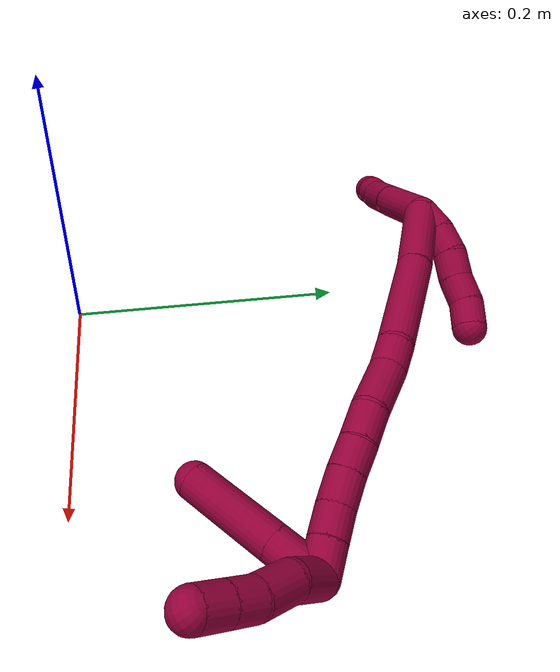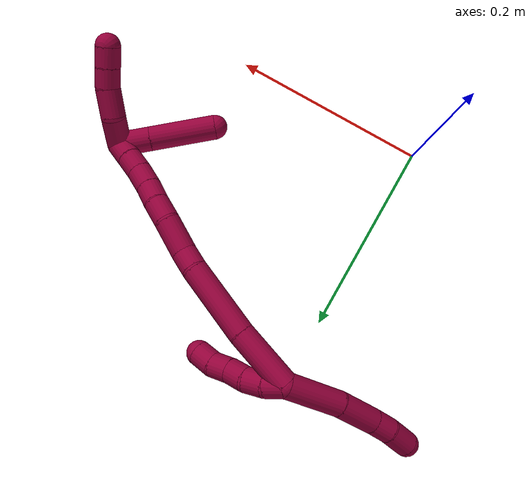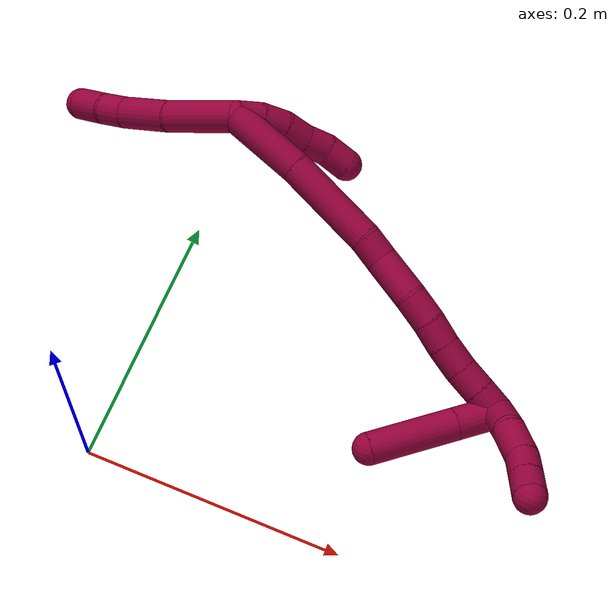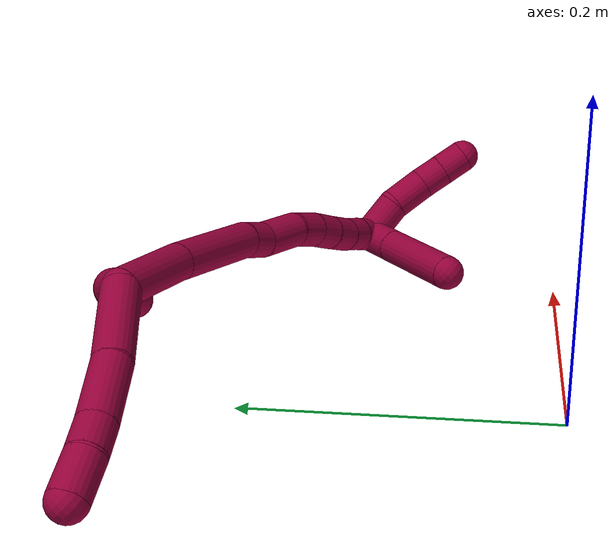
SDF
<sdf version="1.7">
 <world name="default">
  <model name="8">
   <static>0</static>
   <link name="8">
    <collision name="collision-cylinder-e_1_2_8">
     <pose>-0.024759 0.010492 -0.011886 -2.4184 -1.00123 1.93183</pose>
     <geometry><cylinder><radius>0.0125</radius><length>0.0588</length></cylinder></geometry>
     <surface>
      <friction><ode><mu>1.16</mu><mu2>1.16</mu2><slip1>0</slip1><slip2>0</slip2></ode></friction>
      <contact><ode><kp>1e+06</kp><kd>1</kd><max_vel>0</max_vel><min_depth>0.001</min_depth></ode></contact>
     </surface>
    </collision>
    <visual name="visual-cylinder-e_1_2_8">
     <pose>-0.024759 0.010492 -0.011886 -2.4184 -1.00123 1.93183</pose>
     <geometry><cylinder><radius>0.0125</radius><length>0.0588</length></cylinder></geometry>
     <material><ambient>0.584314 0 0.227451 1</ambient></material>
    </visual>
    <collision name="collision-cylinder-e_2_8_9">
     <pose>-0.066558 0.030919 -0.031045 -2.20272 -0.94511 1.5785</pose>
     <geometry><cylinder><radius>0.0125</radius><length>0.042047</length></cylinder></geometry>
     <surface>
      <friction><ode><mu>1.16</mu><mu2>1.16</mu2><slip1>0</slip1><slip2>0</slip2></ode></friction>
      <contact><ode><kp>1e+06</kp><kd>1</kd><max_vel>0</max_vel><min_depth>0.001</min_depth></ode></contact>
     </surface>
    </collision>
    <visual name="visual-cylinder-e_2_8_9">
     <pose>-0.066558 0.030919 -0.031045 -2.20272 -0.94511 1.5785</pose>
     <geometry><cylinder><radius>0.0125</radius><length>0.042047</length></cylinder></geometry>
     <material><ambient>0.584314 0 0.227451 1</ambient></material>
    </visual>
    <collision name="collision-cylinder-e_3_9_10">
     <pose>-0.092565 0.04574 -0.041235 -2.10902 -1.00532 1.53879</pose>
     <geometry><cylinder><radius>0.0125</radius><length>0.021238</length></cylinder></geometry>
     <surface>
      <friction><ode><mu>1.16</mu><mu2>1.16</mu2><slip1>0</slip1><slip2>0</slip2></ode></friction>
      <contact><ode><kp>1e+06</kp><kd>1</kd><max_vel>0</max_vel><min_depth>0.001</min_depth></ode></contact>
     </surface>
    </collision>
    <visual name="visual-cylinder-e_3_9_10">
     <pose>-0.092565 0.04574 -0.041235 -2.10902 -1.00532 1.53879</pose>
     <geometry><cylinder><radius>0.0125</radius><length>0.021238</length></cylinder></geometry>
     <material><ambient>0.584314 0 0.227451 1</ambient></material>
    </visual>
    <collision name="collision-cylinder-e_4_10_6">
     <pose>-0.112038 0.05899 -0.047951 -1.99718 -0.852245 1.22785</pose>
     <geometry><cylinder><radius>0.0125</radius><length>0.027915</length></cylinder></geometry>
     <surface>
      <friction><ode><mu>1.16</mu><mu2>1.16</mu2><slip1>0</slip1><slip2>0</slip2></ode></friction>
      <contact><ode><kp>1e+06</kp><kd>1</kd><max_vel>0</max_vel><min_depth>0.001</min_depth></ode></contact>
     </surface>
    </collision>
    <visual name="visual-cylinder-e_4_10_6">
     <pose>-0.112038 0.05899 -0.047951 -1.99718 -0.852245 1.22785</pose>
     <geometry><cylinder><radius>0.0125</radius><length>0.027915</length></cylinder></geometry>
     <material><ambient>0.584314 0 0.227451 1</ambient></material>
    </visual>
    <collision name="collision-cylinder-e_1_2_11">
     <pose>0.008915 0.004284 0.001474 -1.23935 1.10058 -0.825125</pose>
     <geometry><cylinder><radius>0.0125</radius><length>0.02</length></cylinder></geometry>
     <surface>
      <friction><ode><mu>1.16</mu><mu2>1.16</mu2><slip1>0</slip1><slip2>0</slip2></ode></friction>
      <contact><ode><kp>1e+06</kp><kd>1</kd><max_vel>0</max_vel><min_depth>0.001</min_depth></ode></contact>
     </surface>
    </collision>
    <visual name="visual-cylinder-e_1_2_11">
     <pose>0.008915 0.004284 0.001474 -1.23935 1.10058 -0.825125</pose>
     <geometry><cylinder><radius>0.0125</radius><length>0.02</length></cylinder></geometry>
     <material><ambient>0.584314 0 0.227451 1</ambient></material>
    </visual>
    <collision name="collision-cylinder-e_2_11_12">
     <pose>0.027269 0.011811 0.002328 -1.76002 1.23437 -1.4188</pose>
     <geometry><cylinder><radius>0.0125</radius><length>0.02</length></cylinder></geometry>
     <surface>
      <friction><ode><mu>1.16</mu><mu2>1.16</mu2><slip1>0</slip1><slip2>0</slip2></ode></friction>
      <contact><ode><kp>1e+06</kp><kd>1</kd><max_vel>0</max_vel><min_depth>0.001</min_depth></ode></contact>
     </surface>
    </collision>
    <visual name="visual-cylinder-e_2_11_12">
     <pose>0.027269 0.011811 0.002328 -1.76002 1.23437 -1.4188</pose>
     <geometry><cylinder><radius>0.0125</radius><length>0.02</length></cylinder></geometry>
     <material><ambient>0.584314 0 0.227451 1</ambient></material>
    </visual>
    <collision name="collision-cylinder-e_3_12_13">
     <pose>0.04583 0.017857 -0.001282 -2.38801 1.14848 -2.04376</pose>
     <geometry><cylinder><radius>0.0125</radius><length>0.02</length></cylinder></geometry>
     <surface>
      <friction><ode><mu>1.16</mu><mu2>1.16</mu2><slip1>0</slip1><slip2>0</slip2></ode></friction>
      <contact><ode><kp>1e+06</kp><kd>1</kd><max_vel>0</max_vel><min_depth>0.001</min_depth></ode></contact>
     </surface>
    </collision>
    <visual name="visual-cylinder-e_3_12_13">
     <pose>0.04583 0.017857 -0.001282 -2.38801 1.14848 -2.04376</pose>
     <geometry><cylinder><radius>0.0125</radius><length>0.02</length></cylinder></geometry>
     <material><ambient>0.584314 0 0.227451 1</ambient></material>
    </visual>
    <collision name="collision-cylinder-e_4_13_14">
     <pose>0.064439 0.023539 -0.005572 -1.99549 1.24954 -1.68171</pose>
     <geometry><cylinder><radius>0.0125</radius><length>0.02</length></cylinder></geometry>
     <surface>
      <friction><ode><mu>1.16</mu><mu2>1.16</mu2><slip1>0</slip1><slip2>0</slip2></ode></friction>
      <contact><ode><kp>1e+06</kp><kd>1</kd><max_vel>0</max_vel><min_depth>0.001</min_depth></ode></contact>
     </surface>
    </collision>
    <visual name="visual-cylinder-e_4_13_14">
     <pose>0.064439 0.023539 -0.005572 -1.99549 1.24954 -1.68171</pose>
     <geometry><cylinder><radius>0.0125</radius><length>0.02</length></cylinder></geometry>
     <material><ambient>0.584314 0 0.227451 1</ambient></material>
    </visual>
    <collision name="collision-cylinder-e_5_14_5">
     <pose>0.083373 0.027076 -0.01009 -2.93922 1.23622 -2.85793</pose>
     <geometry><cylinder><radius>0.0125</radius><length>0.02</length></cylinder></geometry>
     <surface>
      <friction><ode><mu>1.16</mu><mu2>1.16</mu2><slip1>0</slip1><slip2>0</slip2></ode></friction>
      <contact><ode><kp>1e+06</kp><kd>1</kd><max_vel>0</max_vel><min_depth>0.001</min_depth></ode></contact>
     </surface>
    </collision>
    <visual name="visual-cylinder-e_5_14_5">
     <pose>0.083373 0.027076 -0.01009 -2.93922 1.23622 -2.85793</pose>
     <geometry><cylinder><radius>0.0125</radius><length>0.02</length></cylinder></geometry>
     <material><ambient>0.584314 0 0.227451 1</ambient></material>
    </visual>
    <collision name="collision-cylinder-e_1_2_15">
     <pose>0.027903 -0.010368 -0.007899 2.22185 1.13378 1.81919</pose>
     <geometry><cylinder><radius>0.0125</radius><length>0.061595</length></cylinder></geometry>
     <surface>
      <friction><ode><mu>1.16</mu><mu2>1.16</mu2><slip1>0</slip1><slip2>0</slip2></ode></friction>
      <contact><ode><kp>1e+06</kp><kd>1</kd><max_vel>0</max_vel><min_depth>0.001</min_depth></ode></contact>
     </surface>
    </collision>
    <visual name="visual-cylinder-e_1_2_15">
     <pose>0.027903 -0.010368 -0.007899 2.22185 1.13378 1.81919</pose>
     <geometry><cylinder><radius>0.0125</radius><length>0.061595</length></cylinder></geometry>
     <material><ambient>0.584314 0 0.227451 1</ambient></material>
    </visual>
    <collision name="collision-cylinder-e_2_15_16">
     <pose>0.088696 -0.034024 -0.028449 2.33163 1.06199 1.88048</pose>
     <geometry><cylinder><radius>0.0125</radius><length>0.075323</length></cylinder></geometry>
     <surface>
      <friction><ode><mu>1.16</mu><mu2>1.16</mu2><slip1>0</slip1><slip2>0</slip2></ode></friction>
      <contact><ode><kp>1e+06</kp><kd>1</kd><max_vel>0</max_vel><min_depth>0.001</min_depth></ode></contact>
     </surface>
    </collision>
    <visual name="visual-cylinder-e_2_15_16">
     <pose>0.088696 -0.034024 -0.028449 2.33163 1.06199 1.88048</pose>
     <geometry><cylinder><radius>0.0125</radius><length>0.075323</length></cylinder></geometry>
     <material><ambient>0.584314 0 0.227451 1</ambient></material>
    </visual>
    <collision name="collision-cylinder-e_3_16_17">
     <pose>0.130132 -0.049786 -0.046098 2.68191 0.992477 2.32579</pose>
     <geometry><cylinder><radius>0.0125</radius><length>0.020408</length></cylinder></geometry>
     <surface>
      <friction><ode><mu>1.16</mu><mu2>1.16</mu2><slip1>0</slip1><slip2>0</slip2></ode></friction>
      <contact><ode><kp>1e+06</kp><kd>1</kd><max_vel>0</max_vel><min_depth>0.001</min_depth></ode></contact>
     </surface>
    </collision>
    <visual name="visual-cylinder-e_3_16_17">
     <pose>0.130132 -0.049786 -0.046098 2.68191 0.992477 2.32579</pose>
     <geometry><cylinder><radius>0.0125</radius><length>0.020408</length></cylinder></geometry>
     <material><ambient>0.584314 0 0.227451 1</ambient></material>
    </visual>
    <collision name="collision-cylinder-e_4_17_18">
     <pose>0.152816 -0.060406 -0.058013 2.27475 0.923632 1.64353</pose>
     <geometry><cylinder><radius>0.0125</radius><length>0.035447</length></cylinder></geometry>
     <surface>
      <friction><ode><mu>1.16</mu><mu2>1.16</mu2><slip1>0</slip1><slip2>0</slip2></ode></friction>
      <contact><ode><kp>1e+06</kp><kd>1</kd><max_vel>0</max_vel><min_depth>0.001</min_depth></ode></contact>
     </surface>
    </collision>
    <visual name="visual-cylinder-e_4_17_18">
     <pose>0.152816 -0.060406 -0.058013 2.27475 0.923632 1.64353</pose>
     <geometry><cylinder><radius>0.0125</radius><length>0.035447</length></cylinder></geometry>
     <material><ambient>0.584314 0 0.227451 1</ambient></material>
    </visual>
    <collision name="collision-cylinder-e_5_18_19">
     <pose>0.176488 -0.071758 -0.070695 2.63419 0.965407 2.22268</pose>
     <geometry><cylinder><radius>0.0125</radius><length>0.023186</length></cylinder></geometry>
     <surface>
      <friction><ode><mu>1.16</mu><mu2>1.16</mu2><slip1>0</slip1><slip2>0</slip2></ode></friction>
      <contact><ode><kp>1e+06</kp><kd>1</kd><max_vel>0</max_vel><min_depth>0.001</min_depth></ode></contact>
     </surface>
    </collision>
    <visual name="visual-cylinder-e_5_18_19">
     <pose>0.176488 -0.071758 -0.070695 2.63419 0.965407 2.22268</pose>
     <geometry><cylinder><radius>0.0125</radius><length>0.023186</length></cylinder></geometry>
     <material><ambient>0.584314 0 0.227451 1</ambient></material>
    </visual>
    <collision name="collision-cylinder-e_6_19_20">
     <pose>0.19398 -0.077132 -0.082408 2.79193 0.898927 2.4396</pose>
     <geometry><cylinder><radius>0.0125</radius><length>0.020338</length></cylinder></geometry>
     <surface>
      <friction><ode><mu>1.16</mu><mu2>1.16</mu2><slip1>0</slip1><slip2>0</slip2></ode></friction>
      <contact><ode><kp>1e+06</kp><kd>1</kd><max_vel>0</max_vel><min_depth>0.001</min_depth></ode></contact>
     </surface>
    </collision>
    <visual name="visual-cylinder-e_6_19_20">
     <pose>0.19398 -0.077132 -0.082408 2.79193 0.898927 2.4396</pose>
     <geometry><cylinder><radius>0.0125</radius><length>0.020338</length></cylinder></geometry>
     <material><ambient>0.584314 0 0.227451 1</ambient></material>
    </visual>
    <collision name="collision-cylinder-e_7_20_21">
     <pose>0.211064 -0.081418 -0.0942 2.79402 0.972762 2.50045</pose>
     <geometry><cylinder><radius>0.0125</radius><length>0.022082</length></cylinder></geometry>
     <surface>
      <friction><ode><mu>1.16</mu><mu2>1.16</mu2><slip1>0</slip1><slip2>0</slip2></ode></friction>
      <contact><ode><kp>1e+06</kp><kd>1</kd><max_vel>0</max_vel><min_depth>0.001</min_depth></ode></contact>
     </surface>
    </collision>
    <visual name="visual-cylinder-e_7_20_21">
     <pose>0.211064 -0.081418 -0.0942 2.79402 0.972762 2.50045</pose>
     <geometry><cylinder><radius>0.0125</radius><length>0.022082</length></cylinder></geometry>
     <material><ambient>0.584314 0 0.227451 1</ambient></material>
    </visual>
    <collision name="collision-cylinder-e_8_21_22">
     <pose>0.228998 -0.085798 -0.104486 2.67048 1.05585 2.36068</pose>
     <geometry><cylinder><radius>0.0125</radius><length>0.020244</length></cylinder></geometry>
     <surface>
      <friction><ode><mu>1.16</mu><mu2>1.16</mu2><slip1>0</slip1><slip2>0</slip2></ode></friction>
      <contact><ode><kp>1e+06</kp><kd>1</kd><max_vel>0</max_vel><min_depth>0.001</min_depth></ode></contact>
     </surface>
    </collision>
    <visual name="visual-cylinder-e_8_21_22">
     <pose>0.228998 -0.085798 -0.104486 2.67048 1.05585 2.36068</pose>
     <geometry><cylinder><radius>0.0125</radius><length>0.020244</length></cylinder></geometry>
     <material><ambient>0.584314 0 0.227451 1</ambient></material>
    </visual>
    <collision name="collision-cylinder-e_9_22_1">
     <pose>0.247101 -0.089956 -0.113856 2.77439 1.05412 2.52387</pose>
     <geometry><cylinder><radius>0.0125</radius><length>0.021377</length></cylinder></geometry>
     <surface>
      <friction><ode><mu>1.16</mu><mu2>1.16</mu2><slip1>0</slip1><slip2>0</slip2></ode></friction>
      <contact><ode><kp>1e+06</kp><kd>1</kd><max_vel>0</max_vel><min_depth>0.001</min_depth></ode></contact>
     </surface>
    </collision>
    <visual name="visual-cylinder-e_9_22_1">
     <pose>0.247101 -0.089956 -0.113856 2.77439 1.05412 2.52387</pose>
     <geometry><cylinder><radius>0.0125</radius><length>0.021377</length></cylinder></geometry>
     <material><ambient>0.584314 0 0.227451 1</ambient></material>
    </visual>
    <collision name="collision-cylinder-e_1_1_23">
     <pose>0.259937 -0.106874 -0.117917 1.5131 0.23123 0.218364</pose>
     <geometry><cylinder><radius>0.0125</radius><length>0.030918</length></cylinder></geometry>
     <surface>
      <friction><ode><mu>1.16</mu><mu2>1.16</mu2><slip1>0</slip1><slip2>0</slip2></ode></friction>
      <contact><ode><kp>1e+06</kp><kd>1</kd><max_vel>0</max_vel><min_depth>0.001</min_depth></ode></contact>
     </surface>
    </collision>
    <visual name="visual-cylinder-e_1_1_23">
     <pose>0.259937 -0.106874 -0.117917 1.5131 0.23123 0.218364</pose>
     <geometry><cylinder><radius>0.0125</radius><length>0.030918</length></cylinder></geometry>
     <material><ambient>0.584314 0 0.227451 1</ambient></material>
    </visual>
    <collision name="collision-cylinder-e_2_23_24">
     <pose>0.26905 -0.134881 -0.119986 1.79324 0.396262 0.492303</pose>
     <geometry><cylinder><radius>0.0125</radius><length>0.028862</length></cylinder></geometry>
     <surface>
      <friction><ode><mu>1.16</mu><mu2>1.16</mu2><slip1>0</slip1><slip2>0</slip2></ode></friction>
      <contact><ode><kp>1e+06</kp><kd>1</kd><max_vel>0</max_vel><min_depth>0.001</min_depth></ode></contact>
     </surface>
    </collision>
    <visual name="visual-cylinder-e_2_23_24">
     <pose>0.26905 -0.134881 -0.119986 1.79324 0.396262 0.492303</pose>
     <geometry><cylinder><radius>0.0125</radius><length>0.028862</length></cylinder></geometry>
     <material><ambient>0.584314 0 0.227451 1</ambient></material>
    </visual>
    <collision name="collision-cylinder-e_3_24_25">
     <pose>0.276409 -0.157433 -0.125255 1.80987 0.179675 0.228348</pose>
     <geometry><cylinder><radius>0.0125</radius><length>0.020017</length></cylinder></geometry>
     <surface>
      <friction><ode><mu>1.16</mu><mu2>1.16</mu2><slip1>0</slip1><slip2>0</slip2></ode></friction>
      <contact><ode><kp>1e+06</kp><kd>1</kd><max_vel>0</max_vel><min_depth>0.001</min_depth></ode></contact>
     </surface>
    </collision>
    <visual name="visual-cylinder-e_3_24_25">
     <pose>0.276409 -0.157433 -0.125255 1.80987 0.179675 0.228348</pose>
     <geometry><cylinder><radius>0.0125</radius><length>0.020017</length></cylinder></geometry>
     <material><ambient>0.584314 0 0.227451 1</ambient></material>
    </visual>
    <collision name="collision-cylinder-e_4_25_4">
     <pose>0.279937 -0.176657 -0.129987 1.8144 0.173088 0.221023</pose>
     <geometry><cylinder><radius>0.0125</radius><length>0.020203</length></cylinder></geometry>
     <surface>
      <friction><ode><mu>1.16</mu><mu2>1.16</mu2><slip1>0</slip1><slip2>0</slip2></ode></friction>
      <contact><ode><kp>1e+06</kp><kd>1</kd><max_vel>0</max_vel><min_depth>0.001</min_depth></ode></contact>
     </surface>
    </collision>
    <visual name="visual-cylinder-e_4_25_4">
     <pose>0.279937 -0.176657 -0.129987 1.8144 0.173088 0.221023</pose>
     <geometry><cylinder><radius>0.0125</radius><length>0.020203</length></cylinder></geometry>
     <material><ambient>0.584314 0 0.227451 1</ambient></material>
    </visual>
    <collision name="collision-cylinder-e_1_1_26">
     <pose>0.242992 -0.096563 -0.12696 2.61883 -0.957378 -2.1897</pose>
     <geometry><cylinder><radius>0.0125</radius><length>0.032783</length></cylinder></geometry>
     <surface>
      <friction><ode><mu>1.16</mu><mu2>1.16</mu2><slip1>0</slip1><slip2>0</slip2></ode></friction>
      <contact><ode><kp>1e+06</kp><kd>1</kd><max_vel>0</max_vel><min_depth>0.001</min_depth></ode></contact>
     </surface>
    </collision>
    <visual name="visual-cylinder-e_1_1_26">
     <pose>0.242992 -0.096563 -0.12696 2.61883 -0.957378 -2.1897</pose>
     <geometry><cylinder><radius>0.0125</radius><length>0.032783</length></cylinder></geometry>
     <material><ambient>0.584314 0 0.227451 1</ambient></material>
    </visual>
    <collision name="collision-cylinder-e_2_26_3">
     <pose>0.202124 -0.110957 -0.151912 2.61812 -0.956533 -2.1877</pose>
     <geometry><cylinder><radius>0.0125</radius><length>0.067217</length></cylinder></geometry>
     <surface>
      <friction><ode><mu>1.16</mu><mu2>1.16</mu2><slip1>0</slip1><slip2>0</slip2></ode></friction>
      <contact><ode><kp>1e+06</kp><kd>1</kd><max_vel>0</max_vel><min_depth>0.001</min_depth></ode></contact>
     </surface>
    </collision>
    <visual name="visual-cylinder-e_2_26_3">
     <pose>0.202124 -0.110957 -0.151912 2.61812 -0.956533 -2.1877</pose>
     <geometry><cylinder><radius>0.0125</radius><length>0.067217</length></cylinder></geometry>
     <material><ambient>0.584314 0 0.227451 1</ambient></material>
    </visual>
    <collision name="collision-sphere-3">
     <pose>0.174659 -0.12064 -0.168689 0 -0 0</pose>
     <geometry><sphere><radius>0.0125</radius></sphere></geometry>
     <surface>
      <friction><ode><mu>1.16</mu><mu2>1.16</mu2><slip1>0</slip1><slip2>0</slip2></ode></friction>
      <contact><ode><kp>1e+06</kp><kd>1</kd><max_vel>0</max_vel><min_depth>0.001</min_depth></ode></contact>
     </surface>
    </collision>
    <visual name="visual-sphere-3">
     <pose>0.174659 -0.12064 -0.168689 0 -0 0</pose>
     <geometry><sphere><radius>0.0125</radius></sphere></geometry>
     <material><ambient>0.584314 0 0.227451 1</ambient></material>
    </visual>
    <collision name="collision-sphere-26">
     <pose>0.229589 -0.101274 -0.135136 0 -0 0</pose>
     <geometry><sphere><radius>0.0125</radius></sphere></geometry>
     <surface>
      <friction><ode><mu>1.16</mu><mu2>1.16</mu2><slip1>0</slip1><slip2>0</slip2></ode></friction>
      <contact><ode><kp>1e+06</kp><kd>1</kd><max_vel>0</max_vel><min_depth>0.001</min_depth></ode></contact>
     </surface>
    </collision>
    <visual name="visual-sphere-26">
     <pose>0.229589 -0.101274 -0.135136 0 -0 0</pose>
     <geometry><sphere><radius>0.0125</radius></sphere></geometry>
     <material><ambient>0.584314 0 0.227451 1</ambient></material>
    </visual>
    <collision name="collision-sphere-4">
     <pose>0.281677 -0.186314 -0.132387 0 -0 0</pose>
     <geometry><sphere><radius>0.0125</radius></sphere></geometry>
     <surface>
      <friction><ode><mu>1.16</mu><mu2>1.16</mu2><slip1>0</slip1><slip2>0</slip2></ode></friction>
      <contact><ode><kp>1e+06</kp><kd>1</kd><max_vel>0</max_vel><min_depth>0.001</min_depth></ode></contact>
     </surface>
    </collision>
    <visual name="visual-sphere-4">
     <pose>0.281677 -0.186314 -0.132387 0 -0 0</pose>
     <geometry><sphere><radius>0.0125</radius></sphere></geometry>
     <material><ambient>0.584314 0 0.227451 1</ambient></material>
    </visual>
    <collision name="collision-sphere-25">
     <pose>0.278197 -0.167001 -0.127586 0 -0 0</pose>
     <geometry><sphere><radius>0.0125</radius></sphere></geometry>
     <surface>
      <friction><ode><mu>1.16</mu><mu2>1.16</mu2><slip1>0</slip1><slip2>0</slip2></ode></friction>
      <contact><ode><kp>1e+06</kp><kd>1</kd><max_vel>0</max_vel><min_depth>0.001</min_depth></ode></contact>
     </surface>
    </collision>
    <visual name="visual-sphere-25">
     <pose>0.278197 -0.167001 -0.127586 0 -0 0</pose>
     <geometry><sphere><radius>0.0125</radius></sphere></geometry>
     <material><ambient>0.584314 0 0.227451 1</ambient></material>
    </visual>
    <collision name="collision-sphere-24">
     <pose>0.27462 -0.147866 -0.122923 0 -0 0</pose>
     <geometry><sphere><radius>0.0125</radius></sphere></geometry>
     <surface>
      <friction><ode><mu>1.16</mu><mu2>1.16</mu2><slip1>0</slip1><slip2>0</slip2></ode></friction>
      <contact><ode><kp>1e+06</kp><kd>1</kd><max_vel>0</max_vel><min_depth>0.001</min_depth></ode></contact>
     </surface>
    </collision>
    <visual name="visual-sphere-24">
     <pose>0.27462 -0.147866 -0.122923 0 -0 0</pose>
     <geometry><sphere><radius>0.0125</radius></sphere></geometry>
     <material><ambient>0.584314 0 0.227451 1</ambient></material>
    </visual>
    <collision name="collision-sphere-23">
     <pose>0.26348 -0.121897 -0.117049 0 -0 0</pose>
     <geometry><sphere><radius>0.0125</radius></sphere></geometry>
     <surface>
      <friction><ode><mu>1.16</mu><mu2>1.16</mu2><slip1>0</slip1><slip2>0</slip2></ode></friction>
      <contact><ode><kp>1e+06</kp><kd>1</kd><max_vel>0</max_vel><min_depth>0.001</min_depth></ode></contact>
     </surface>
    </collision>
    <visual name="visual-sphere-23">
     <pose>0.26348 -0.121897 -0.117049 0 -0 0</pose>
     <geometry><sphere><radius>0.0125</radius></sphere></geometry>
     <material><ambient>0.584314 0 0.227451 1</ambient></material>
    </visual>
    <collision name="collision-sphere-1">
     <pose>0.256394 -0.091851 -0.118784 0 -0 0</pose>
     <geometry><sphere><radius>0.0125</radius></sphere></geometry>
     <surface>
      <friction><ode><mu>1.16</mu><mu2>1.16</mu2><slip1>0</slip1><slip2>0</slip2></ode></friction>
      <contact><ode><kp>1e+06</kp><kd>1</kd><max_vel>0</max_vel><min_depth>0.001</min_depth></ode></contact>
     </surface>
    </collision>
    <visual name="visual-sphere-1">
     <pose>0.256394 -0.091851 -0.118784 0 -0 0</pose>
     <geometry><sphere><radius>0.0125</radius></sphere></geometry>
     <material><ambient>0.584314 0 0.227451 1</ambient></material>
    </visual>
    <collision name="collision-sphere-22">
     <pose>0.237808 -0.08806 -0.108928 0 -0 0</pose>
     <geometry><sphere><radius>0.0125</radius></sphere></geometry>
     <surface>
      <friction><ode><mu>1.16</mu><mu2>1.16</mu2><slip1>0</slip1><slip2>0</slip2></ode></friction>
      <contact><ode><kp>1e+06</kp><kd>1</kd><max_vel>0</max_vel><min_depth>0.001</min_depth></ode></contact>
     </surface>
    </collision>
    <visual name="visual-sphere-22">
     <pose>0.237808 -0.08806 -0.108928 0 -0 0</pose>
     <geometry><sphere><radius>0.0125</radius></sphere></geometry>
     <material><ambient>0.584314 0 0.227451 1</ambient></material>
    </visual>
    <collision name="collision-sphere-21">
     <pose>0.220189 -0.083535 -0.100044 0 -0 0</pose>
     <geometry><sphere><radius>0.0125</radius></sphere></geometry>
     <surface>
      <friction><ode><mu>1.16</mu><mu2>1.16</mu2><slip1>0</slip1><slip2>0</slip2></ode></friction>
      <contact><ode><kp>1e+06</kp><kd>1</kd><max_vel>0</max_vel><min_depth>0.001</min_depth></ode></contact>
     </surface>
    </collision>
    <visual name="visual-sphere-21">
     <pose>0.220189 -0.083535 -0.100044 0 -0 0</pose>
     <geometry><sphere><radius>0.0125</radius></sphere></geometry>
     <material><ambient>0.584314 0 0.227451 1</ambient></material>
    </visual>
    <collision name="collision-sphere-11">
     <pose>0.017829 0.008568 0.002949 0 -0 0</pose>
     <geometry><sphere><radius>0.0125</radius></sphere></geometry>
     <surface>
      <friction><ode><mu>1.16</mu><mu2>1.16</mu2><slip1>0</slip1><slip2>0</slip2></ode></friction>
      <contact><ode><kp>1e+06</kp><kd>1</kd><max_vel>0</max_vel><min_depth>0.001</min_depth></ode></contact>
     </surface>
    </collision>
    <visual name="visual-sphere-11">
     <pose>0.017829 0.008568 0.002949 0 -0 0</pose>
     <geometry><sphere><radius>0.0125</radius></sphere></geometry>
     <material><ambient>0.584314 0 0.227451 1</ambient></material>
    </visual>
    <collision name="collision-sphere-6">
     <pose>-0.122544 0.067356 -0.051751 0 -0 0</pose>
     <geometry><sphere><radius>0.0125</radius></sphere></geometry>
     <surface>
      <friction><ode><mu>1.16</mu><mu2>1.16</mu2><slip1>0</slip1><slip2>0</slip2></ode></friction>
      <contact><ode><kp>1e+06</kp><kd>1</kd><max_vel>0</max_vel><min_depth>0.001</min_depth></ode></contact>
     </surface>
    </collision>
    <visual name="visual-sphere-6">
     <pose>-0.122544 0.067356 -0.051751 0 -0 0</pose>
     <geometry><sphere><radius>0.0125</radius></sphere></geometry>
     <material><ambient>0.584314 0 0.227451 1</ambient></material>
    </visual>
    <collision name="collision-sphere-10">
     <pose>-0.101531 0.050625 -0.044151 0 -0 0</pose>
     <geometry><sphere><radius>0.0125</radius></sphere></geometry>
     <surface>
      <friction><ode><mu>1.16</mu><mu2>1.16</mu2><slip1>0</slip1><slip2>0</slip2></ode></friction>
      <contact><ode><kp>1e+06</kp><kd>1</kd><max_vel>0</max_vel><min_depth>0.001</min_depth></ode></contact>
     </surface>
    </collision>
    <visual name="visual-sphere-10">
     <pose>-0.101531 0.050625 -0.044151 0 -0 0</pose>
     <geometry><sphere><radius>0.0125</radius></sphere></geometry>
     <material><ambient>0.584314 0 0.227451 1</ambient></material>
    </visual>
    <collision name="collision-sphere-9">
     <pose>-0.083599 0.040854 -0.038318 0 -0 0</pose>
     <geometry><sphere><radius>0.0125</radius></sphere></geometry>
     <surface>
      <friction><ode><mu>1.16</mu><mu2>1.16</mu2><slip1>0</slip1><slip2>0</slip2></ode></friction>
      <contact><ode><kp>1e+06</kp><kd>1</kd><max_vel>0</max_vel><min_depth>0.001</min_depth></ode></contact>
     </surface>
    </collision>
    <visual name="visual-sphere-9">
     <pose>-0.083599 0.040854 -0.038318 0 -0 0</pose>
     <geometry><sphere><radius>0.0125</radius></sphere></geometry>
     <material><ambient>0.584314 0 0.227451 1</ambient></material>
    </visual>
    <collision name="collision-sphere-2">
     <geometry><sphere><radius>0.0125</radius></sphere></geometry>
     <surface>
      <friction><ode><mu>1.16</mu><mu2>1.16</mu2><slip1>0</slip1><slip2>0</slip2></ode></friction>
      <contact><ode><kp>1e+06</kp><kd>1</kd><max_vel>0</max_vel><min_depth>0.001</min_depth></ode></contact>
     </surface>
    </collision>
    <visual name="visual-sphere-2">
     <geometry><sphere><radius>0.0125</radius></sphere></geometry>
     <material><ambient>0.584314 0 0.227451 1</ambient></material>
    </visual>
    <collision name="collision-sphere-19">
     <pose>0.186021 -0.074963 -0.076461 0 -0 0</pose>
     <geometry><sphere><radius>0.0125</radius></sphere></geometry>
     <surface>
      <friction><ode><mu>1.16</mu><mu2>1.16</mu2><slip1>0</slip1><slip2>0</slip2></ode></friction>
      <contact><ode><kp>1e+06</kp><kd>1</kd><max_vel>0</max_vel><min_depth>0.001</min_depth></ode></contact>
     </surface>
    </collision>
    <visual name="visual-sphere-19">
     <pose>0.186021 -0.074963 -0.076461 0 -0 0</pose>
     <geometry><sphere><radius>0.0125</radius></sphere></geometry>
     <material><ambient>0.584314 0 0.227451 1</ambient></material>
    </visual>
    <collision name="collision-sphere-8">
     <pose>-0.049518 0.020984 -0.023772 0 -0 0</pose>
     <geometry><sphere><radius>0.0125</radius></sphere></geometry>
     <surface>
      <friction><ode><mu>1.16</mu><mu2>1.16</mu2><slip1>0</slip1><slip2>0</slip2></ode></friction>
      <contact><ode><kp>1e+06</kp><kd>1</kd><max_vel>0</max_vel><min_depth>0.001</min_depth></ode></contact>
     </surface>
    </collision>
    <visual name="visual-sphere-8">
     <pose>-0.049518 0.020984 -0.023772 0 -0 0</pose>
     <geometry><sphere><radius>0.0125</radius></sphere></geometry>
     <material><ambient>0.584314 0 0.227451 1</ambient></material>
    </visual>
    <collision name="collision-sphere-12">
     <pose>0.036708 0.015053 0.001707 0 -0 0</pose>
     <geometry><sphere><radius>0.0125</radius></sphere></geometry>
     <surface>
      <friction><ode><mu>1.16</mu><mu2>1.16</mu2><slip1>0</slip1><slip2>0</slip2></ode></friction>
      <contact><ode><kp>1e+06</kp><kd>1</kd><max_vel>0</max_vel><min_depth>0.001</min_depth></ode></contact>
     </surface>
    </collision>
    <visual name="visual-sphere-12">
     <pose>0.036708 0.015053 0.001707 0 -0 0</pose>
     <geometry><sphere><radius>0.0125</radius></sphere></geometry>
     <material><ambient>0.584314 0 0.227451 1</ambient></material>
    </visual>
    <collision name="collision-sphere-13">
     <pose>0.054951 0.020662 -0.004271 0 -0 0</pose>
     <geometry><sphere><radius>0.0125</radius></sphere></geometry>
     <surface>
      <friction><ode><mu>1.16</mu><mu2>1.16</mu2><slip1>0</slip1><slip2>0</slip2></ode></friction>
      <contact><ode><kp>1e+06</kp><kd>1</kd><max_vel>0</max_vel><min_depth>0.001</min_depth></ode></contact>
     </surface>
    </collision>
    <visual name="visual-sphere-13">
     <pose>0.054951 0.020662 -0.004271 0 -0 0</pose>
     <geometry><sphere><radius>0.0125</radius></sphere></geometry>
     <material><ambient>0.584314 0 0.227451 1</ambient></material>
    </visual>
    <collision name="collision-sphere-14">
     <pose>0.073928 0.026416 -0.006873 0 -0 0</pose>
     <geometry><sphere><radius>0.0125</radius></sphere></geometry>
     <surface>
      <friction><ode><mu>1.16</mu><mu2>1.16</mu2><slip1>0</slip1><slip2>0</slip2></ode></friction>
      <contact><ode><kp>1e+06</kp><kd>1</kd><max_vel>0</max_vel><min_depth>0.001</min_depth></ode></contact>
     </surface>
    </collision>
    <visual name="visual-sphere-14">
     <pose>0.073928 0.026416 -0.006873 0 -0 0</pose>
     <geometry><sphere><radius>0.0125</radius></sphere></geometry>
     <material><ambient>0.584314 0 0.227451 1</ambient></material>
    </visual>
    <collision name="collision-sphere-5">
     <pose>0.092819 0.027736 -0.013307 0 -0 0</pose>
     <geometry><sphere><radius>0.0125</radius></sphere></geometry>
     <surface>
      <friction><ode><mu>1.16</mu><mu2>1.16</mu2><slip1>0</slip1><slip2>0</slip2></ode></friction>
      <contact><ode><kp>1e+06</kp><kd>1</kd><max_vel>0</max_vel><min_depth>0.001</min_depth></ode></contact>
     </surface>
    </collision>
    <visual name="visual-sphere-5">
     <pose>0.092819 0.027736 -0.013307 0 -0 0</pose>
     <geometry><sphere><radius>0.0125</radius></sphere></geometry>
     <material><ambient>0.584314 0 0.227451 1</ambient></material>
    </visual>
    <collision name="collision-sphere-15">
     <pose>0.055806 -0.020737 -0.015799 0 -0 0</pose>
     <geometry><sphere><radius>0.0125</radius></sphere></geometry>
     <surface>
      <friction><ode><mu>1.16</mu><mu2>1.16</mu2><slip1>0</slip1><slip2>0</slip2></ode></friction>
      <contact><ode><kp>1e+06</kp><kd>1</kd><max_vel>0</max_vel><min_depth>0.001</min_depth></ode></contact>
     </surface>
    </collision>
    <visual name="visual-sphere-15">
     <pose>0.055806 -0.020737 -0.015799 0 -0 0</pose>
     <geometry><sphere><radius>0.0125</radius></sphere></geometry>
     <material><ambient>0.584314 0 0.227451 1</ambient></material>
    </visual>
    <collision name="collision-sphere-16">
     <pose>0.121587 -0.047311 -0.041099 0 -0 0</pose>
     <geometry><sphere><radius>0.0125</radius></sphere></geometry>
     <surface>
      <friction><ode><mu>1.16</mu><mu2>1.16</mu2><slip1>0</slip1><slip2>0</slip2></ode></friction>
      <contact><ode><kp>1e+06</kp><kd>1</kd><max_vel>0</max_vel><min_depth>0.001</min_depth></ode></contact>
     </surface>
    </collision>
    <visual name="visual-sphere-16">
     <pose>0.121587 -0.047311 -0.041099 0 -0 0</pose>
     <geometry><sphere><radius>0.0125</radius></sphere></geometry>
     <material><ambient>0.584314 0 0.227451 1</ambient></material>
    </visual>
    <collision name="collision-sphere-17">
     <pose>0.138677 -0.052261 -0.051096 0 -0 0</pose>
     <geometry><sphere><radius>0.0125</radius></sphere></geometry>
     <surface>
      <friction><ode><mu>1.16</mu><mu2>1.16</mu2><slip1>0</slip1><slip2>0</slip2></ode></friction>
      <contact><ode><kp>1e+06</kp><kd>1</kd><max_vel>0</max_vel><min_depth>0.001</min_depth></ode></contact>
     </surface>
    </collision>
    <visual name="visual-sphere-17">
     <pose>0.138677 -0.052261 -0.051096 0 -0 0</pose>
     <geometry><sphere><radius>0.0125</radius></sphere></geometry>
     <material><ambient>0.584314 0 0.227451 1</ambient></material>
    </visual>
    <collision name="collision-sphere-18">
     <pose>0.166956 -0.068552 -0.064929 0 -0 0</pose>
     <geometry><sphere><radius>0.0125</radius></sphere></geometry>
     <surface>
      <friction><ode><mu>1.16</mu><mu2>1.16</mu2><slip1>0</slip1><slip2>0</slip2></ode></friction>
      <contact><ode><kp>1e+06</kp><kd>1</kd><max_vel>0</max_vel><min_depth>0.001</min_depth></ode></contact>
     </surface>
    </collision>
    <visual name="visual-sphere-18">
     <pose>0.166956 -0.068552 -0.064929 0 -0 0</pose>
     <geometry><sphere><radius>0.0125</radius></sphere></geometry>
     <material><ambient>0.584314 0 0.227451 1</ambient></material>
    </visual>
    <collision name="collision-sphere-20">
     <pose>0.201939 -0.0793 -0.088355 0 -0 0</pose>
     <geometry><sphere><radius>0.0125</radius></sphere></geometry>
     <surface>
      <friction><ode><mu>1.16</mu><mu2>1.16</mu2><slip1>0</slip1><slip2>0</slip2></ode></friction>
      <contact><ode><kp>1e+06</kp><kd>1</kd><max_vel>0</max_vel><min_depth>0.001</min_depth></ode></contact>
     </surface>
    </collision>
    <visual name="visual-sphere-20">
     <pose>0.201939 -0.0793 -0.088355 0 -0 0</pose>
     <geometry><sphere><radius>0.0125</radius></sphere></geometry>
     <material><ambient>0.584314 0 0.227451 1</ambient></material>
    </visual>
    <inertial>
     <pose>0.110506 -0.044485 -0.062224 0 -0 0</pose>
     <mass>0.75</mass>
     <inertia>
      <ixx>3.2e-05</ixx>
      <ixy>0</ixy>
      <ixz>0</ixz>
      <iyy>0.000145</iyy>
      <iyz>0</iyz>
      <izz>-1.3e-05</izz>
     </inertia>
    </inertial>
   </link>
   <pose>0.005378 0.266665 0.07403 -0.81813 0.182017 0.098353</pose>
  </model>
 </world>
</sdf>
